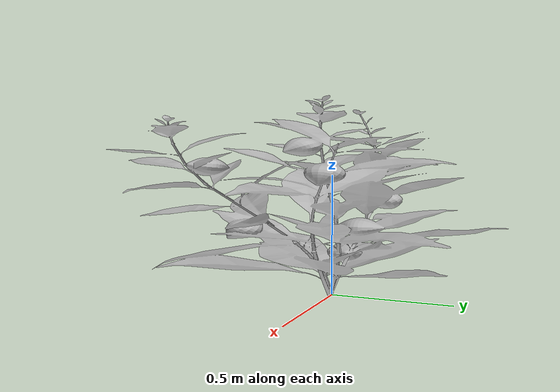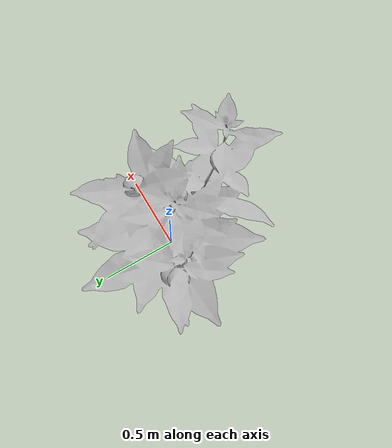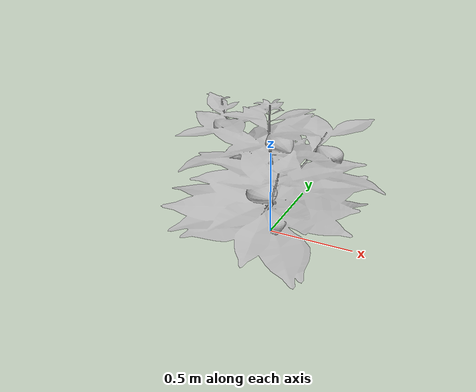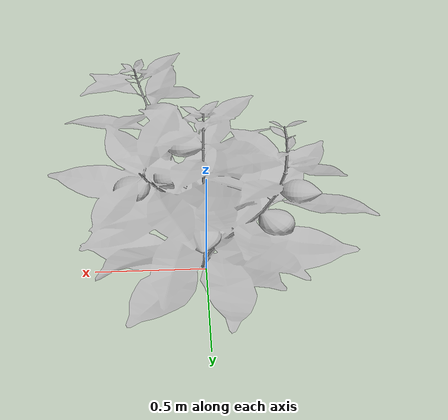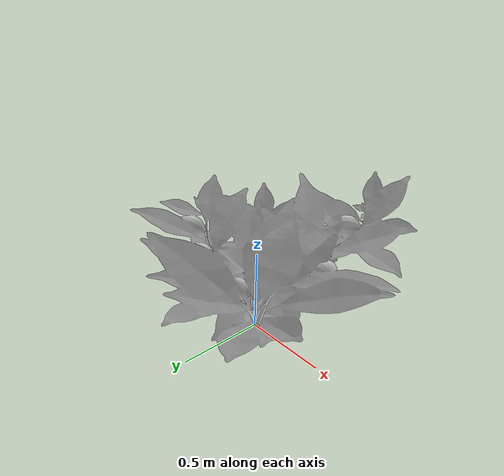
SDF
<?xml version='1.0'?>
<sdf version='1.6'>
  <model name='package_2'>
    <link name='link_0'>
      <pose frame=''>0 0 0 0 -0 0</pose>
      <self_collide>0</self_collide>
      <enable_wind>0</enable_wind>
      <kinematic>0</kinematic>
      <gravity>1</gravity>
      <inertial>
        <mass>1</mass>
        <pose frame=''>0 0 0 0 -0 0</pose>
        <inertia>
          <ixx>1</ixx>
          <ixy>0</ixy>
          <ixz>0</ixz>
          <iyy>1</iyy>
          <iyz>0</iyz>
          <izz>1</izz>
        </inertia>
      </inertial>
      <visual name='visual'>
        <pose frame=''>0 0 0 0 -0 0</pose>
        <geometry>
          <mesh>
            <uri>model://package_2/meshes/package.dae</uri>
            <scale>4 4 2</scale>
          </mesh>
        </geometry>
        <transparency>0</transparency>
        <cast_shadows>False</cast_shadows>
      </visual>
      <collision name="collision">
        <geometry>
          <mesh>
            <uri>model://package_2/meshes/package.dae</uri>
            <scale>4 4 2</scale>
          </mesh>
        </geometry>
      </collision>
    </link>
    <static>1</static>
    <allow_auto_disable>1</allow_auto_disable>
  </model>

</sdf>
